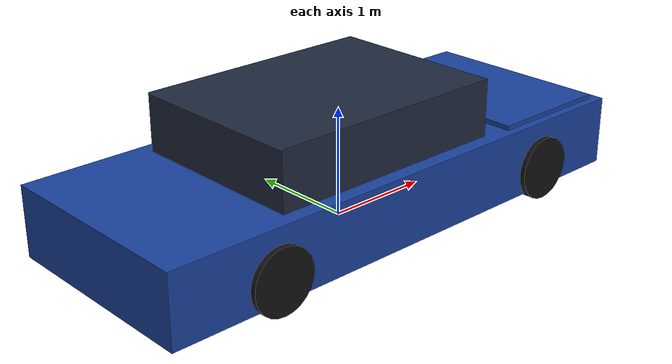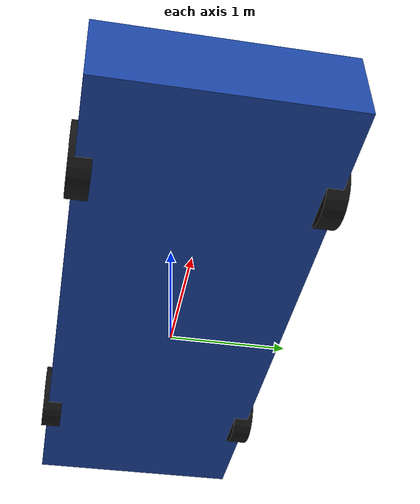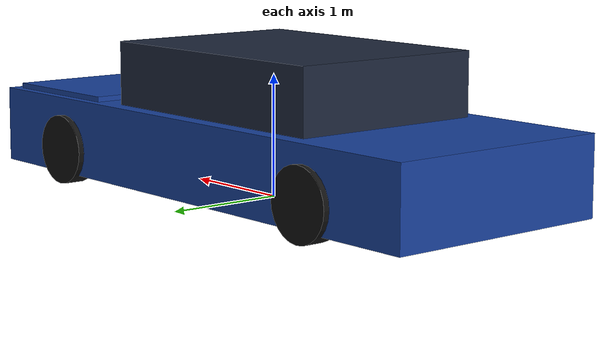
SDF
<?xml version="1.0"?>
<!-- 轿车（真车尺寸 4.997×1.963×1.455 m，小米 SU7）。给《拍摄接口规范 v9》的全身控制演示当被摄物：
     底盘参与运镜，机位 0.8~4.5 m 不需要缩放，直接用大模型输出的原始坐标。
     模型原点在车底中心，车头朝 +X。static=true。 -->
<sdf version="1.6">
  <model name="sedan_car_full">
    <static>true</static>
    <link name="body">
      <visual name="lower"><pose>0 0 0.4074 0 0 0</pose>
        <geometry><box><size>4.997 1.963 0.6402</size></box></geometry>
        <material><ambient>0.05 0.12 0.28 1</ambient><diffuse>0.10 0.26 0.62 1</diffuse>
          <specular>0.95 0.95 1.0 96</specular></material></visual>
      <visual name="cabin"><pose>-0.1999 0 0.9894 0 0 0</pose>
        <geometry><box><size>2.2986 1.6882 0.5238</size></box></geometry>
        <material><ambient>0.06 0.08 0.12 1</ambient><diffuse>0.12 0.16 0.24 1</diffuse>
          <specular>0.9 0.95 1.0 110</specular></material></visual>
      <visual name="hood"><pose>1.7989 0 0.7275 0 0 0</pose>
        <geometry><box><size>1.1993 1.806 0.0873</size></box></geometry>
        <material><ambient>0.05 0.12 0.28 1</ambient><diffuse>0.10 0.26 0.62 1</diffuse>
          <specular>0.95 0.95 1.0 96</specular></material></visual>
      <visual name="hl_l"><pose>2.4335 0.5889 0.4947 0 1.5708 0</pose>
        <geometry><cylinder><radius>0.1019</radius><length>0.0999</length></cylinder></geometry>
        <material><ambient>0.9 0.9 0.8 1</ambient><diffuse>1.0 1.0 0.9 1</diffuse><emissive>0.35 0.35 0.3 1</emissive></material></visual>
      <visual name="hl_r"><pose>2.4335 -0.5889 0.4947 0 1.5708 0</pose>
        <geometry><cylinder><radius>0.1019</radius><length>0.0999</length></cylinder></geometry>
        <material><ambient>0.9 0.9 0.8 1</ambient><diffuse>1.0 1.0 0.9 1</diffuse><emissive>0.35 0.35 0.3 1</emissive></material></visual>
      <visual name="tail"><pose>-2.4585 0 0.582 0 0 0</pose>
        <geometry><box><size>0.06 1.5704 0.0728</size></box></geometry>
        <material><ambient>0.5 0.03 0.03 1</ambient><diffuse>0.9 0.06 0.06 1</diffuse><emissive>0.4 0.02 0.02 1</emissive></material></visual>
      <collision name="col"><pose>0 0 0.582 0 0 0</pose>
        <geometry><box><size>4.997 1.963 1.164</size></box></geometry></collision>
    </link>
    <link name="wheels">
      <visual name="fl"><pose>1.599 0.9422 0.291 1.5708 0 0</pose>
        <geometry><cylinder><radius>0.291</radius><length>0.1767</length></cylinder></geometry>
        <material><ambient>0.02 0.02 0.02 1</ambient><diffuse>0.07 0.07 0.07 1</diffuse></material></visual>
      <visual name="fr"><pose>1.599 -0.9422 0.291 1.5708 0 0</pose>
        <geometry><cylinder><radius>0.291</radius><length>0.1767</length></cylinder></geometry>
        <material><ambient>0.02 0.02 0.02 1</ambient><diffuse>0.07 0.07 0.07 1</diffuse></material></visual>
      <visual name="rl"><pose>-1.4991 0.9422 0.291 1.5708 0 0</pose>
        <geometry><cylinder><radius>0.291</radius><length>0.1767</length></cylinder></geometry>
        <material><ambient>0.02 0.02 0.02 1</ambient><diffuse>0.07 0.07 0.07 1</diffuse></material></visual>
      <visual name="rr"><pose>-1.4991 -0.9422 0.291 1.5708 0 0</pose>
        <geometry><cylinder><radius>0.291</radius><length>0.1767</length></cylinder></geometry>
        <material><ambient>0.02 0.02 0.02 1</ambient><diffuse>0.07 0.07 0.07 1</diffuse></material></visual>
    </link>
  </model>
</sdf>
